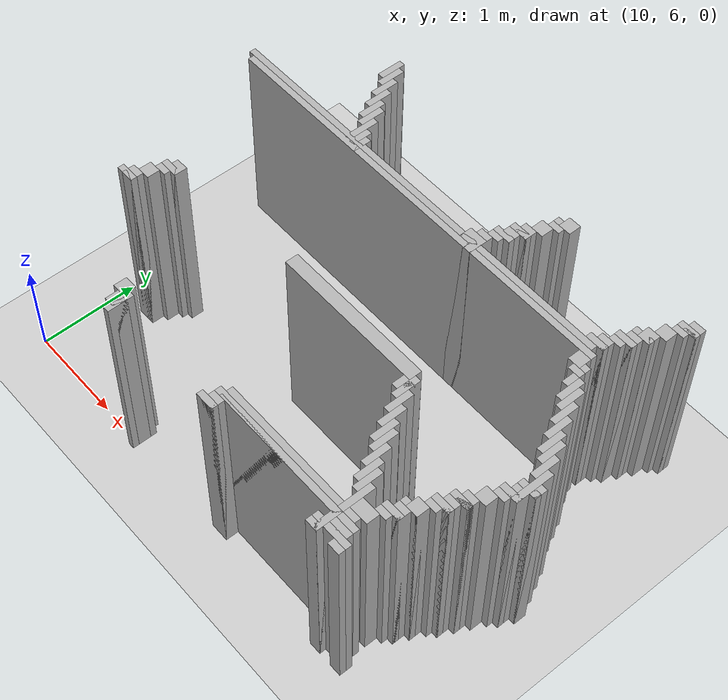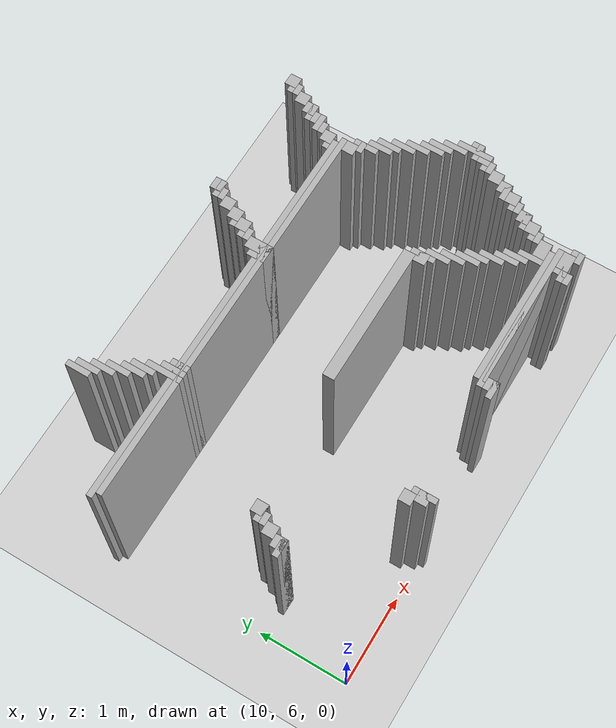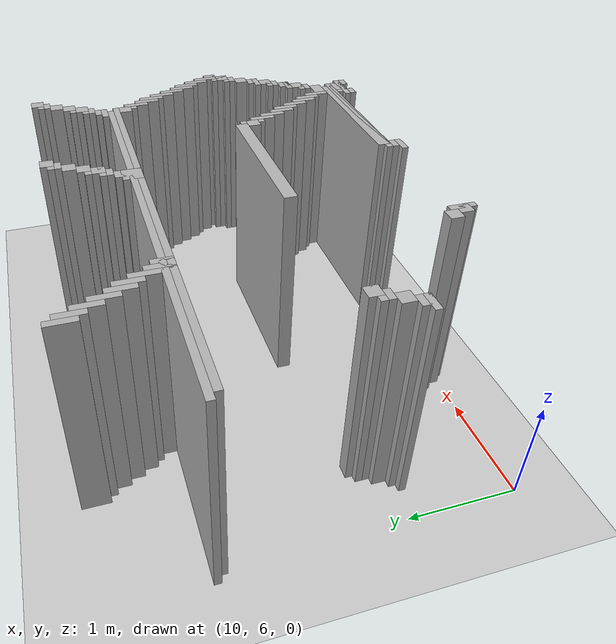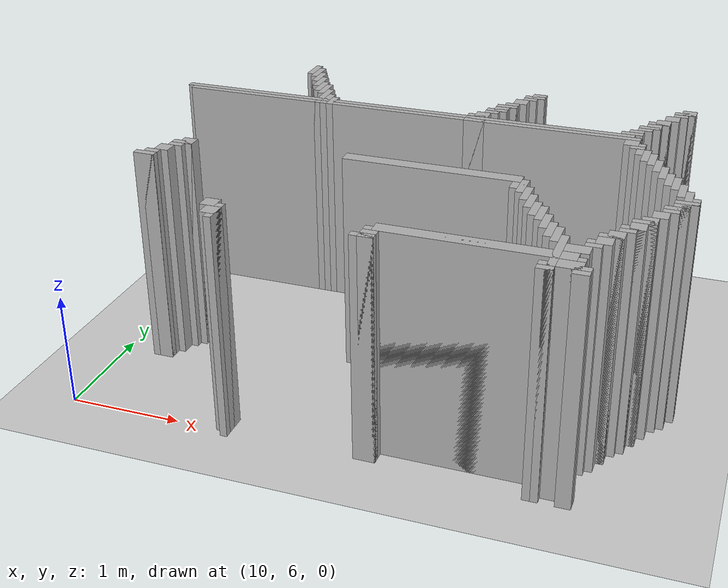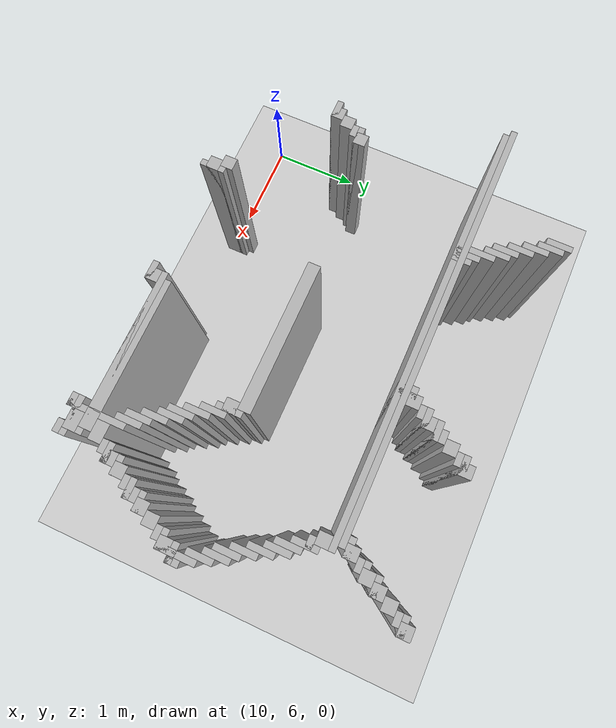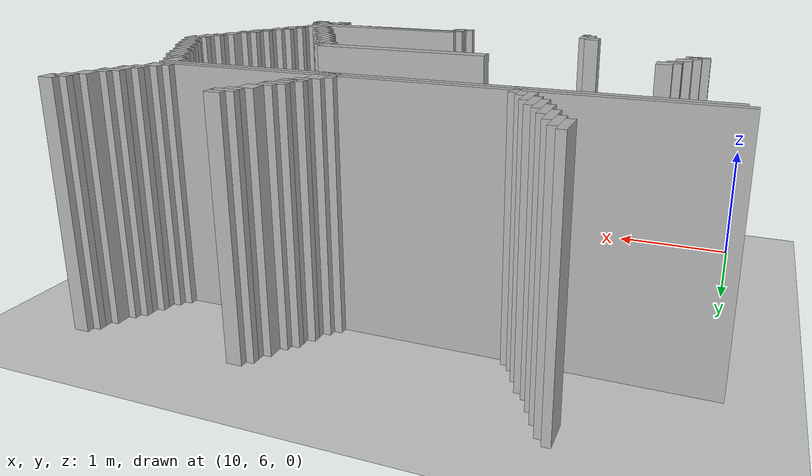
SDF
<sdf version="1.6">
 <world name="slam_world">
  <model name="ground_plane">
   <static>true</static>
   <link name="link">
    <collision name="collision">
     <geometry><plane><normal>0 0 1</normal><size>100 100</size></plane></geometry>
    </collision>
    <visual name="visual">
     <geometry><plane><normal>0 0 1</normal><size>100 100</size></plane></geometry>
     <material>
      <ambient>0.8 0.8 0.8 1</ambient>
      <diffuse>0.8 0.8 0.8 1</diffuse>
      <specular>0.8 0.8 0.8 1</specular>
     </material>
    </visual>
   </link>
  </model>
  <model name="wall_1402">
   <static>true</static>
   <pose>10.882978723404255 9.446808510638297 1.0 0 0 0</pose>
   <link name="link">
    <collision name="collision">
     <geometry><box><size>0.06382978723404255 0.2553191489361702 2.0</size></box></geometry>
    </collision>
    <visual name="visual">
     <geometry><box><size>0.06382978723404255 0.2553191489361702 2.0</size></box></geometry>
     <material><ambient>0.5 0.5 0.5 1</ambient><diffuse>0.7 0.7 0.7 1</diffuse></material>
    </visual>
   </link>
  </model>
  <model name="wall_1410">
   <static>true</static>
   <pose>10.946808510638297 9.382978723404255 1.0 0 0 0</pose>
   <link name="link">
    <collision name="collision">
     <geometry><box><size>0.06382978723404255 0.2553191489361702 2.0</size></box></geometry>
    </collision>
    <visual name="visual">
     <geometry><box><size>0.06382978723404255 0.2553191489361702 2.0</size></box></geometry>
     <material><ambient>0.5 0.5 0.5 1</ambient><diffuse>0.7 0.7 0.7 1</diffuse></material>
    </visual>
   </link>
  </model>
  <model name="wall_1417">
   <static>true</static>
   <pose>13.212765957446807 9.382978723404255 1.0 0 0 0</pose>
   <link name="link">
    <collision name="collision">
     <geometry><box><size>0.1276595744680851 0.1276595744680851 2.0</size></box></geometry>
    </collision>
    <visual name="visual">
     <geometry><box><size>0.1276595744680851 0.1276595744680851 2.0</size></box></geometry>
     <material><ambient>0.5 0.5 0.5 1</ambient><diffuse>0.7 0.7 0.7 1</diffuse></material>
    </visual>
   </link>
  </model>
  <model name="wall_1418">
   <static>true</static>
   <pose>14.617021276595743 9.382978723404255 1.0 0 0 0</pose>
   <link name="link">
    <collision name="collision">
     <geometry><box><size>0.1276595744680851 0.1276595744680851 2.0</size></box></geometry>
    </collision>
    <visual name="visual">
     <geometry><box><size>0.1276595744680851 0.1276595744680851 2.0</size></box></geometry>
     <material><ambient>0.5 0.5 0.5 1</ambient><diffuse>0.7 0.7 0.7 1</diffuse></material>
    </visual>
   </link>
  </model>
  <model name="wall_1424">
   <static>true</static>
   <pose>11.01063829787234 9.25531914893617 1.0 0 0 0</pose>
   <link name="link">
    <collision name="collision">
     <geometry><box><size>0.06382978723404255 0.2553191489361702 2.0</size></box></geometry>
    </collision>
    <visual name="visual">
     <geometry><box><size>0.06382978723404255 0.2553191489361702 2.0</size></box></geometry>
     <material><ambient>0.5 0.5 0.5 1</ambient><diffuse>0.7 0.7 0.7 1</diffuse></material>
    </visual>
   </link>
  </model>
  <model name="wall_1425">
   <static>true</static>
   <pose>13.180851063829786 9.351063829787233 1.0 0 0 0</pose>
   <link name="link">
    <collision name="collision">
     <geometry><box><size>0.19148936170212766 0.06382978723404255 2.0</size></box></geometry>
    </collision>
    <visual name="visual">
     <geometry><box><size>0.19148936170212766 0.06382978723404255 2.0</size></box></geometry>
     <material><ambient>0.5 0.5 0.5 1</ambient><diffuse>0.7 0.7 0.7 1</diffuse></material>
    </visual>
   </link>
  </model>
  <model name="wall_1426">
   <static>true</static>
   <pose>14.585106382978722 9.351063829787233 1.0 0 0 0</pose>
   <link name="link">
    <collision name="collision">
     <geometry><box><size>0.19148936170212766 0.06382978723404255 2.0</size></box></geometry>
    </collision>
    <visual name="visual">
     <geometry><box><size>0.19148936170212766 0.06382978723404255 2.0</size></box></geometry>
     <material><ambient>0.5 0.5 0.5 1</ambient><diffuse>0.7 0.7 0.7 1</diffuse></material>
    </visual>
   </link>
  </model>
  <model name="wall_1430">
   <static>true</static>
   <pose>13.148936170212766 9.287234042553191 1.0 0 0 0</pose>
   <link name="link">
    <collision name="collision">
     <geometry><box><size>0.1276595744680851 0.06382978723404255 2.0</size></box></geometry>
    </collision>
    <visual name="visual">
     <geometry><box><size>0.1276595744680851 0.06382978723404255 2.0</size></box></geometry>
     <material><ambient>0.5 0.5 0.5 1</ambient><diffuse>0.7 0.7 0.7 1</diffuse></material>
    </visual>
   </link>
  </model>
  <model name="wall_1431">
   <static>true</static>
   <pose>14.553191489361701 9.287234042553191 1.0 0 0 0</pose>
   <link name="link">
    <collision name="collision">
     <geometry><box><size>0.1276595744680851 0.06382978723404255 2.0</size></box></geometry>
    </collision>
    <visual name="visual">
     <geometry><box><size>0.1276595744680851 0.06382978723404255 2.0</size></box></geometry>
     <material><ambient>0.5 0.5 0.5 1</ambient><diffuse>0.7 0.7 0.7 1</diffuse></material>
    </visual>
   </link>
  </model>
  <model name="wall_1437">
   <static>true</static>
   <pose>11.074468085106382 9.127659574468085 1.0 0 0 0</pose>
   <link name="link">
    <collision name="collision">
     <geometry><box><size>0.06382978723404255 0.2553191489361702 2.0</size></box></geometry>
    </collision>
    <visual name="visual">
     <geometry><box><size>0.06382978723404255 0.2553191489361702 2.0</size></box></geometry>
     <material><ambient>0.5 0.5 0.5 1</ambient><diffuse>0.7 0.7 0.7 1</diffuse></material>
    </visual>
   </link>
  </model>
  <model name="wall_1438">
   <static>true</static>
   <pose>13.085106382978722 9.191489361702127 1.0 0 0 0</pose>
   <link name="link">
    <collision name="collision">
     <geometry><box><size>0.1276595744680851 0.1276595744680851 2.0</size></box></geometry>
    </collision>
    <visual name="visual">
     <geometry><box><size>0.1276595744680851 0.1276595744680851 2.0</size></box></geometry>
     <material><ambient>0.5 0.5 0.5 1</ambient><diffuse>0.7 0.7 0.7 1</diffuse></material>
    </visual>
   </link>
  </model>
  <model name="wall_1439">
   <static>true</static>
   <pose>14.489361702127658 9.191489361702127 1.0 0 0 0</pose>
   <link name="link">
    <collision name="collision">
     <geometry><box><size>0.1276595744680851 0.1276595744680851 2.0</size></box></geometry>
    </collision>
    <visual name="visual">
     <geometry><box><size>0.1276595744680851 0.1276595744680851 2.0</size></box></geometry>
     <material><ambient>0.5 0.5 0.5 1</ambient><diffuse>0.7 0.7 0.7 1</diffuse></material>
    </visual>
   </link>
  </model>
  <model name="wall_1445">
   <static>true</static>
   <pose>11.138297872340425 9.0 1.0 0 0 0</pose>
   <link name="link">
    <collision name="collision">
     <geometry><box><size>0.06382978723404255 0.2553191489361702 2.0</size></box></geometry>
    </collision>
    <visual name="visual">
     <geometry><box><size>0.06382978723404255 0.2553191489361702 2.0</size></box></geometry>
     <material><ambient>0.5 0.5 0.5 1</ambient><diffuse>0.7 0.7 0.7 1</diffuse></material>
    </visual>
   </link>
  </model>
  <model name="wall_1446">
   <static>true</static>
   <pose>13.02127659574468 9.063829787234042 1.0 0 0 0</pose>
   <link name="link">
    <collision name="collision">
     <geometry><box><size>0.1276595744680851 0.1276595744680851 2.0</size></box></geometry>
    </collision>
    <visual name="visual">
     <geometry><box><size>0.1276595744680851 0.1276595744680851 2.0</size></box></geometry>
     <material><ambient>0.5 0.5 0.5 1</ambient><diffuse>0.7 0.7 0.7 1</diffuse></material>
    </visual>
   </link>
  </model>
  <model name="wall_1447">
   <static>true</static>
   <pose>14.425531914893616 9.063829787234042 1.0 0 0 0</pose>
   <link name="link">
    <collision name="collision">
     <geometry><box><size>0.1276595744680851 0.1276595744680851 2.0</size></box></geometry>
    </collision>
    <visual name="visual">
     <geometry><box><size>0.1276595744680851 0.1276595744680851 2.0</size></box></geometry>
     <material><ambient>0.5 0.5 0.5 1</ambient><diffuse>0.7 0.7 0.7 1</diffuse></material>
    </visual>
   </link>
  </model>
  <model name="wall_1453">
   <static>true</static>
   <pose>11.202127659574467 8.936170212765957 1.0 0 0 0</pose>
   <link name="link">
    <collision name="collision">
     <geometry><box><size>0.06382978723404255 0.2553191489361702 2.0</size></box></geometry>
    </collision>
    <visual name="visual">
     <geometry><box><size>0.06382978723404255 0.2553191489361702 2.0</size></box></geometry>
     <material><ambient>0.5 0.5 0.5 1</ambient><diffuse>0.7 0.7 0.7 1</diffuse></material>
    </visual>
   </link>
  </model>
  <model name="wall_1454">
   <static>true</static>
   <pose>12.989361702127658 9.03191489361702 1.0 0 0 0</pose>
   <link name="link">
    <collision name="collision">
     <geometry><box><size>0.19148936170212766 0.06382978723404255 2.0</size></box></geometry>
    </collision>
    <visual name="visual">
     <geometry><box><size>0.19148936170212766 0.06382978723404255 2.0</size></box></geometry>
     <material><ambient>0.5 0.5 0.5 1</ambient><diffuse>0.7 0.7 0.7 1</diffuse></material>
    </visual>
   </link>
  </model>
  <model name="wall_1455">
   <static>true</static>
   <pose>14.393617021276595 9.03191489361702 1.0 0 0 0</pose>
   <link name="link">
    <collision name="collision">
     <geometry><box><size>0.19148936170212766 0.06382978723404255 2.0</size></box></geometry>
    </collision>
    <visual name="visual">
     <geometry><box><size>0.19148936170212766 0.06382978723404255 2.0</size></box></geometry>
     <material><ambient>0.5 0.5 0.5 1</ambient><diffuse>0.7 0.7 0.7 1</diffuse></material>
    </visual>
   </link>
  </model>
  <model name="wall_1459">
   <static>true</static>
   <pose>12.957446808510637 8.936170212765957 1.0 0 0 0</pose>
   <link name="link">
    <collision name="collision">
     <geometry><box><size>0.1276595744680851 0.1276595744680851 2.0</size></box></geometry>
    </collision>
    <visual name="visual">
     <geometry><box><size>0.1276595744680851 0.1276595744680851 2.0</size></box></geometry>
     <material><ambient>0.5 0.5 0.5 1</ambient><diffuse>0.7 0.7 0.7 1</diffuse></material>
    </visual>
   </link>
  </model>
  <model name="wall_1460">
   <static>true</static>
   <pose>14.361702127659573 8.936170212765957 1.0 0 0 0</pose>
   <link name="link">
    <collision name="collision">
     <geometry><box><size>0.1276595744680851 0.1276595744680851 2.0</size></box></geometry>
    </collision>
    <visual name="visual">
     <geometry><box><size>0.1276595744680851 0.1276595744680851 2.0</size></box></geometry>
     <material><ambient>0.5 0.5 0.5 1</ambient><diffuse>0.7 0.7 0.7 1</diffuse></material>
    </visual>
   </link>
  </model>
  <model name="wall_1466">
   <static>true</static>
   <pose>11.26595744680851 8.74468085106383 1.0 0 0 0</pose>
   <link name="link">
    <collision name="collision">
     <geometry><box><size>0.06382978723404255 0.3829787234042553 2.0</size></box></geometry>
    </collision>
    <visual name="visual">
     <geometry><box><size>0.06382978723404255 0.3829787234042553 2.0</size></box></geometry>
     <material><ambient>0.5 0.5 0.5 1</ambient><diffuse>0.7 0.7 0.7 1</diffuse></material>
    </visual>
   </link>
  </model>
  <model name="wall_1467">
   <static>true</static>
   <pose>12.925531914893616 8.904255319148936 1.0 0 0 0</pose>
   <link name="link">
    <collision name="collision">
     <geometry><box><size>0.19148936170212766 0.06382978723404255 2.0</size></box></geometry>
    </collision>
    <visual name="visual">
     <geometry><box><size>0.19148936170212766 0.06382978723404255 2.0</size></box></geometry>
     <material><ambient>0.5 0.5 0.5 1</ambient><diffuse>0.7 0.7 0.7 1</diffuse></material>
    </visual>
   </link>
  </model>
  <model name="wall_1468">
   <static>true</static>
   <pose>14.329787234042552 8.904255319148936 1.0 0 0 0</pose>
   <link name="link">
    <collision name="collision">
     <geometry><box><size>0.19148936170212766 0.06382978723404255 2.0</size></box></geometry>
    </collision>
    <visual name="visual">
     <geometry><box><size>0.19148936170212766 0.06382978723404255 2.0</size></box></geometry>
     <material><ambient>0.5 0.5 0.5 1</ambient><diffuse>0.7 0.7 0.7 1</diffuse></material>
    </visual>
   </link>
  </model>
  <model name="wall_1472">
   <static>true</static>
   <pose>12.893617021276595 8.840425531914892 1.0 0 0 0</pose>
   <link name="link">
    <collision name="collision">
     <geometry><box><size>0.1276595744680851 0.06382978723404255 2.0</size></box></geometry>
    </collision>
    <visual name="visual">
     <geometry><box><size>0.1276595744680851 0.06382978723404255 2.0</size></box></geometry>
     <material><ambient>0.5 0.5 0.5 1</ambient><diffuse>0.7 0.7 0.7 1</diffuse></material>
    </visual>
   </link>
  </model>
  <model name="wall_1473">
   <static>true</static>
   <pose>14.297872340425531 8.840425531914892 1.0 0 0 0</pose>
   <link name="link">
    <collision name="collision">
     <geometry><box><size>0.1276595744680851 0.06382978723404255 2.0</size></box></geometry>
    </collision>
    <visual name="visual">
     <geometry><box><size>0.1276595744680851 0.06382978723404255 2.0</size></box></geometry>
     <material><ambient>0.5 0.5 0.5 1</ambient><diffuse>0.7 0.7 0.7 1</diffuse></material>
    </visual>
   </link>
  </model>
  <model name="wall_1479">
   <static>true</static>
   <pose>11.329787234042552 8.680851063829786 1.0 0 0 0</pose>
   <link name="link">
    <collision name="collision">
     <geometry><box><size>0.06382978723404255 0.2553191489361702 2.0</size></box></geometry>
    </collision>
    <visual name="visual">
     <geometry><box><size>0.06382978723404255 0.2553191489361702 2.0</size></box></geometry>
     <material><ambient>0.5 0.5 0.5 1</ambient><diffuse>0.7 0.7 0.7 1</diffuse></material>
    </visual>
   </link>
  </model>
  <model name="wall_1480">
   <static>true</static>
   <pose>12.829787234042552 8.680851063829786 1.0 0 0 0</pose>
   <link name="link">
    <collision name="collision">
     <geometry><box><size>0.1276595744680851 0.2553191489361702 2.0</size></box></geometry>
    </collision>
    <visual name="visual">
     <geometry><box><size>0.1276595744680851 0.2553191489361702 2.0</size></box></geometry>
     <material><ambient>0.5 0.5 0.5 1</ambient><diffuse>0.7 0.7 0.7 1</diffuse></material>
    </visual>
   </link>
  </model>
  <model name="wall_1481">
   <static>true</static>
   <pose>14.234042553191488 8.74468085106383 1.0 0 0 0</pose>
   <link name="link">
    <collision name="collision">
     <geometry><box><size>0.1276595744680851 0.1276595744680851 2.0</size></box></geometry>
    </collision>
    <visual name="visual">
     <geometry><box><size>0.1276595744680851 0.1276595744680851 2.0</size></box></geometry>
     <material><ambient>0.5 0.5 0.5 1</ambient><diffuse>0.7 0.7 0.7 1</diffuse></material>
    </visual>
   </link>
  </model>
  <model name="wall_1484">
   <static>true</static>
   <pose>11.393617021276595 8.648936170212766 1.0 0 0 0</pose>
   <link name="link">
    <collision name="collision">
     <geometry><box><size>0.06382978723404255 0.19148936170212766 2.0</size></box></geometry>
    </collision>
    <visual name="visual">
     <geometry><box><size>0.06382978723404255 0.19148936170212766 2.0</size></box></geometry>
     <material><ambient>0.5 0.5 0.5 1</ambient><diffuse>0.7 0.7 0.7 1</diffuse></material>
    </visual>
   </link>
  </model>
  <model name="wall_1485">
   <static>true</static>
   <pose>12.797872340425531 8.648936170212766 1.0 0 0 0</pose>
   <link name="link">
    <collision name="collision">
     <geometry><box><size>0.19148936170212766 0.19148936170212766 2.0</size></box></geometry>
    </collision>
    <visual name="visual">
     <geometry><box><size>0.19148936170212766 0.19148936170212766 2.0</size></box></geometry>
     <material><ambient>0.5 0.5 0.5 1</ambient><diffuse>0.7 0.7 0.7 1</diffuse></material>
    </visual>
   </link>
  </model>
  <model name="wall_1486">
   <static>true</static>
   <pose>14.202127659574467 8.712765957446807 1.0 0 0 0</pose>
   <link name="link">
    <collision name="collision">
     <geometry><box><size>0.19148936170212766 0.06382978723404255 2.0</size></box></geometry>
    </collision>
    <visual name="visual">
     <geometry><box><size>0.19148936170212766 0.06382978723404255 2.0</size></box></geometry>
     <material><ambient>0.5 0.5 0.5 1</ambient><diffuse>0.7 0.7 0.7 1</diffuse></material>
    </visual>
   </link>
  </model>
  <model name="wall_1493">
   <static>true</static>
   <pose>12.063829787234042 8.648936170212766 1.0 0 0 0</pose>
   <link name="link">
    <collision name="collision">
     <geometry><box><size>4.340425531914893 0.06382978723404255 2.0</size></box></geometry>
    </collision>
    <visual name="visual">
     <geometry><box><size>4.340425531914893 0.06382978723404255 2.0</size></box></geometry>
     <material><ambient>0.5 0.5 0.5 1</ambient><diffuse>0.7 0.7 0.7 1</diffuse></material>
    </visual>
   </link>
  </model>
  <model name="wall_1497">
   <static>true</static>
   <pose>12.127659574468083 8.585106382978722 1.0 0 0 0</pose>
   <link name="link">
    <collision name="collision">
     <geometry><box><size>4.340425531914893 0.06382978723404255 2.0</size></box></geometry>
    </collision>
    <visual name="visual">
     <geometry><box><size>4.340425531914893 0.06382978723404255 2.0</size></box></geometry>
     <material><ambient>0.5 0.5 0.5 1</ambient><diffuse>0.7 0.7 0.7 1</diffuse></material>
    </visual>
   </link>
  </model>
  <model name="wall_1501">
   <static>true</static>
   <pose>14.234042553191488 8.48936170212766 1.0 0 0 0</pose>
   <link name="link">
    <collision name="collision">
     <geometry><box><size>0.1276595744680851 0.1276595744680851 2.0</size></box></geometry>
    </collision>
    <visual name="visual">
     <geometry><box><size>0.1276595744680851 0.1276595744680851 2.0</size></box></geometry>
     <material><ambient>0.5 0.5 0.5 1</ambient><diffuse>0.7 0.7 0.7 1</diffuse></material>
    </visual>
   </link>
  </model>
  <model name="wall_1505">
   <static>true</static>
   <pose>14.329787234042552 8.361702127659575 1.0 0 0 0</pose>
   <link name="link">
    <collision name="collision">
     <geometry><box><size>0.06382978723404255 0.2553191489361702 2.0</size></box></geometry>
    </collision>
    <visual name="visual">
     <geometry><box><size>0.06382978723404255 0.2553191489361702 2.0</size></box></geometry>
     <material><ambient>0.5 0.5 0.5 1</ambient><diffuse>0.7 0.7 0.7 1</diffuse></material>
    </visual>
   </link>
  </model>
  <model name="wall_1508">
   <static>true</static>
   <pose>14.297872340425531 8.393617021276595 1.0 0 0 0</pose>
   <link name="link">
    <collision name="collision">
     <geometry><box><size>0.1276595744680851 0.06382978723404255 2.0</size></box></geometry>
    </collision>
    <visual name="visual">
     <geometry><box><size>0.1276595744680851 0.06382978723404255 2.0</size></box></geometry>
     <material><ambient>0.5 0.5 0.5 1</ambient><diffuse>0.7 0.7 0.7 1</diffuse></material>
    </visual>
   </link>
  </model>
  <model name="wall_1513">
   <static>true</static>
   <pose>14.393617021276595 8.23404255319149 1.0 0 0 0</pose>
   <link name="link">
    <collision name="collision">
     <geometry><box><size>0.06382978723404255 0.2553191489361702 2.0</size></box></geometry>
    </collision>
    <visual name="visual">
     <geometry><box><size>0.06382978723404255 0.2553191489361702 2.0</size></box></geometry>
     <material><ambient>0.5 0.5 0.5 1</ambient><diffuse>0.7 0.7 0.7 1</diffuse></material>
    </visual>
   </link>
  </model>
  <model name="wall_1518">
   <static>true</static>
   <pose>14.457446808510637 8.170212765957446 1.0 0 0 0</pose>
   <link name="link">
    <collision name="collision">
     <geometry><box><size>0.06382978723404255 0.2553191489361702 2.0</size></box></geometry>
    </collision>
    <visual name="visual">
     <geometry><box><size>0.06382978723404255 0.2553191489361702 2.0</size></box></geometry>
     <material><ambient>0.5 0.5 0.5 1</ambient><diffuse>0.7 0.7 0.7 1</diffuse></material>
    </visual>
   </link>
  </model>
  <model name="wall_1525">
   <static>true</static>
   <pose>14.52127659574468 8.042553191489361 1.0 0 0 0</pose>
   <link name="link">
    <collision name="collision">
     <geometry><box><size>0.06382978723404255 0.2553191489361702 2.0</size></box></geometry>
    </collision>
    <visual name="visual">
     <geometry><box><size>0.06382978723404255 0.2553191489361702 2.0</size></box></geometry>
     <material><ambient>0.5 0.5 0.5 1</ambient><diffuse>0.7 0.7 0.7 1</diffuse></material>
    </visual>
   </link>
  </model>
  <model name="wall_1531">
   <static>true</static>
   <pose>14.585106382978722 7.914893617021276 1.0 0 0 0</pose>
   <link name="link">
    <collision name="collision">
     <geometry><box><size>0.06382978723404255 0.2553191489361702 2.0</size></box></geometry>
    </collision>
    <visual name="visual">
     <geometry><box><size>0.06382978723404255 0.2553191489361702 2.0</size></box></geometry>
     <material><ambient>0.5 0.5 0.5 1</ambient><diffuse>0.7 0.7 0.7 1</diffuse></material>
    </visual>
   </link>
  </model>
  <model name="wall_1536">
   <static>true</static>
   <pose>14.648936170212766 7.787234042553191 1.0 0 0 0</pose>
   <link name="link">
    <collision name="collision">
     <geometry><box><size>0.06382978723404255 0.2553191489361702 2.0</size></box></geometry>
    </collision>
    <visual name="visual">
     <geometry><box><size>0.06382978723404255 0.2553191489361702 2.0</size></box></geometry>
     <material><ambient>0.5 0.5 0.5 1</ambient><diffuse>0.7 0.7 0.7 1</diffuse></material>
    </visual>
   </link>
  </model>
  <model name="wall_1541">
   <static>true</static>
   <pose>14.712765957446807 7.723404255319148 1.0 0 0 0</pose>
   <link name="link">
    <collision name="collision">
     <geometry><box><size>0.06382978723404255 0.2553191489361702 2.0</size></box></geometry>
    </collision>
    <visual name="visual">
     <geometry><box><size>0.06382978723404255 0.2553191489361702 2.0</size></box></geometry>
     <material><ambient>0.5 0.5 0.5 1</ambient><diffuse>0.7 0.7 0.7 1</diffuse></material>
    </visual>
   </link>
  </model>
  <model name="wall_1547">
   <static>true</static>
   <pose>14.77659574468085 7.595744680851063 1.0 0 0 0</pose>
   <link name="link">
    <collision name="collision">
     <geometry><box><size>0.06382978723404255 0.2553191489361702 2.0</size></box></geometry>
    </collision>
    <visual name="visual">
     <geometry><box><size>0.06382978723404255 0.2553191489361702 2.0</size></box></geometry>
     <material><ambient>0.5 0.5 0.5 1</ambient><diffuse>0.7 0.7 0.7 1</diffuse></material>
    </visual>
   </link>
  </model>
  <model name="wall_1553">
   <static>true</static>
   <pose>14.840425531914892 7.404255319148936 1.0 0 0 0</pose>
   <link name="link">
    <collision name="collision">
     <geometry><box><size>0.06382978723404255 0.3829787234042553 2.0</size></box></geometry>
    </collision>
    <visual name="visual">
     <geometry><box><size>0.06382978723404255 0.3829787234042553 2.0</size></box></geometry>
     <material><ambient>0.5 0.5 0.5 1</ambient><diffuse>0.7 0.7 0.7 1</diffuse></material>
    </visual>
   </link>
  </model>
  <model name="wall_1562">
   <static>true</static>
   <pose>12.76595744680851 7.404255319148936 1.0 0 0 0</pose>
   <link name="link">
    <collision name="collision">
     <geometry><box><size>1.5319148936170213 0.1276595744680851 2.0</size></box></geometry>
    </collision>
    <visual name="visual">
     <geometry><box><size>1.5319148936170213 0.1276595744680851 2.0</size></box></geometry>
     <material><ambient>0.5 0.5 0.5 1</ambient><diffuse>0.7 0.7 0.7 1</diffuse></material>
    </visual>
   </link>
  </model>
  <model name="wall_1563">
   <static>true</static>
   <pose>14.904255319148936 7.404255319148936 1.0 0 0 0</pose>
   <link name="link">
    <collision name="collision">
     <geometry><box><size>0.06382978723404255 0.1276595744680851 2.0</size></box></geometry>
    </collision>
    <visual name="visual">
     <geometry><box><size>0.06382978723404255 0.1276595744680851 2.0</size></box></geometry>
     <material><ambient>0.5 0.5 0.5 1</ambient><diffuse>0.7 0.7 0.7 1</diffuse></material>
    </visual>
   </link>
  </model>
  <model name="wall_1569">
   <static>true</static>
   <pose>13.563829787234042 7.276595744680851 1.0 0 0 0</pose>
   <link name="link">
    <collision name="collision">
     <geometry><box><size>0.06382978723404255 0.2553191489361702 2.0</size></box></geometry>
    </collision>
    <visual name="visual">
     <geometry><box><size>0.06382978723404255 0.2553191489361702 2.0</size></box></geometry>
     <material><ambient>0.5 0.5 0.5 1</ambient><diffuse>0.7 0.7 0.7 1</diffuse></material>
    </visual>
   </link>
  </model>
  <model name="wall_1570">
   <static>true</static>
   <pose>14.840425531914892 7.372340425531914 1.0 0 0 0</pose>
   <link name="link">
    <collision name="collision">
     <geometry><box><size>0.19148936170212766 0.06382978723404255 2.0</size></box></geometry>
    </collision>
    <visual name="visual">
     <geometry><box><size>0.19148936170212766 0.06382978723404255 2.0</size></box></geometry>
     <material><ambient>0.5 0.5 0.5 1</ambient><diffuse>0.7 0.7 0.7 1</diffuse></material>
    </visual>
   </link>
  </model>
  <model name="wall_1577">
   <static>true</static>
   <pose>10.595744680851062 7.276595744680851 1.0 0 0 0</pose>
   <link name="link">
    <collision name="collision">
     <geometry><box><size>0.1276595744680851 0.1276595744680851 2.0</size></box></geometry>
    </collision>
    <visual name="visual">
     <geometry><box><size>0.1276595744680851 0.1276595744680851 2.0</size></box></geometry>
     <material><ambient>0.5 0.5 0.5 1</ambient><diffuse>0.7 0.7 0.7 1</diffuse></material>
    </visual>
   </link>
  </model>
  <model name="wall_1578">
   <static>true</static>
   <pose>13.53191489361702 7.276595744680851 1.0 0 0 0</pose>
   <link name="link">
    <collision name="collision">
     <geometry><box><size>0.1276595744680851 0.1276595744680851 2.0</size></box></geometry>
    </collision>
    <visual name="visual">
     <geometry><box><size>0.1276595744680851 0.1276595744680851 2.0</size></box></geometry>
     <material><ambient>0.5 0.5 0.5 1</ambient><diffuse>0.7 0.7 0.7 1</diffuse></material>
    </visual>
   </link>
  </model>
  <model name="wall_1579">
   <static>true</static>
   <pose>14.808510638297872 7.276595744680851 1.0 0 0 0</pose>
   <link name="link">
    <collision name="collision">
     <geometry><box><size>0.1276595744680851 0.1276595744680851 2.0</size></box></geometry>
    </collision>
    <visual name="visual">
     <geometry><box><size>0.1276595744680851 0.1276595744680851 2.0</size></box></geometry>
     <material><ambient>0.5 0.5 0.5 1</ambient><diffuse>0.7 0.7 0.7 1</diffuse></material>
    </visual>
   </link>
  </model>
  <model name="wall_1586">
   <static>true</static>
   <pose>10.563829787234042 7.244680851063829 1.0 0 0 0</pose>
   <link name="link">
    <collision name="collision">
     <geometry><box><size>0.19148936170212766 0.06382978723404255 2.0</size></box></geometry>
    </collision>
    <visual name="visual">
     <geometry><box><size>0.19148936170212766 0.06382978723404255 2.0</size></box></geometry>
     <material><ambient>0.5 0.5 0.5 1</ambient><diffuse>0.7 0.7 0.7 1</diffuse></material>
    </visual>
   </link>
  </model>
  <model name="wall_1587">
   <static>true</static>
   <pose>13.627659574468083 7.148936170212766 1.0 0 0 0</pose>
   <link name="link">
    <collision name="collision">
     <geometry><box><size>0.06382978723404255 0.2553191489361702 2.0</size></box></geometry>
    </collision>
    <visual name="visual">
     <geometry><box><size>0.06382978723404255 0.2553191489361702 2.0</size></box></geometry>
     <material><ambient>0.5 0.5 0.5 1</ambient><diffuse>0.7 0.7 0.7 1</diffuse></material>
    </visual>
   </link>
  </model>
  <model name="wall_1588">
   <static>true</static>
   <pose>14.77659574468085 7.244680851063829 1.0 0 0 0</pose>
   <link name="link">
    <collision name="collision">
     <geometry><box><size>0.19148936170212766 0.06382978723404255 2.0</size></box></geometry>
    </collision>
    <visual name="visual">
     <geometry><box><size>0.19148936170212766 0.06382978723404255 2.0</size></box></geometry>
     <material><ambient>0.5 0.5 0.5 1</ambient><diffuse>0.7 0.7 0.7 1</diffuse></material>
    </visual>
   </link>
  </model>
  <model name="wall_1594">
   <static>true</static>
   <pose>10.53191489361702 7.180851063829786 1.0 0 0 0</pose>
   <link name="link">
    <collision name="collision">
     <geometry><box><size>0.1276595744680851 0.06382978723404255 2.0</size></box></geometry>
    </collision>
    <visual name="visual">
     <geometry><box><size>0.1276595744680851 0.06382978723404255 2.0</size></box></geometry>
     <material><ambient>0.5 0.5 0.5 1</ambient><diffuse>0.7 0.7 0.7 1</diffuse></material>
    </visual>
   </link>
  </model>
  <model name="wall_1595">
   <static>true</static>
   <pose>14.744680851063828 7.180851063829786 1.0 0 0 0</pose>
   <link name="link">
    <collision name="collision">
     <geometry><box><size>0.1276595744680851 0.06382978723404255 2.0</size></box></geometry>
    </collision>
    <visual name="visual">
     <geometry><box><size>0.1276595744680851 0.06382978723404255 2.0</size></box></geometry>
     <material><ambient>0.5 0.5 0.5 1</ambient><diffuse>0.7 0.7 0.7 1</diffuse></material>
    </visual>
   </link>
  </model>
  <model name="wall_1602">
   <static>true</static>
   <pose>10.468085106382977 7.085106382978723 1.0 0 0 0</pose>
   <link name="link">
    <collision name="collision">
     <geometry><box><size>0.1276595744680851 0.1276595744680851 2.0</size></box></geometry>
    </collision>
    <visual name="visual">
     <geometry><box><size>0.1276595744680851 0.1276595744680851 2.0</size></box></geometry>
     <material><ambient>0.5 0.5 0.5 1</ambient><diffuse>0.7 0.7 0.7 1</diffuse></material>
    </visual>
   </link>
  </model>
  <model name="wall_1603">
   <static>true</static>
   <pose>13.691489361702127 7.0212765957446805 1.0 0 0 0</pose>
   <link name="link">
    <collision name="collision">
     <geometry><box><size>0.06382978723404255 0.2553191489361702 2.0</size></box></geometry>
    </collision>
    <visual name="visual">
     <geometry><box><size>0.06382978723404255 0.2553191489361702 2.0</size></box></geometry>
     <material><ambient>0.5 0.5 0.5 1</ambient><diffuse>0.7 0.7 0.7 1</diffuse></material>
    </visual>
   </link>
  </model>
  <model name="wall_1604">
   <static>true</static>
   <pose>14.680851063829786 7.085106382978723 1.0 0 0 0</pose>
   <link name="link">
    <collision name="collision">
     <geometry><box><size>0.1276595744680851 0.1276595744680851 2.0</size></box></geometry>
    </collision>
    <visual name="visual">
     <geometry><box><size>0.1276595744680851 0.1276595744680851 2.0</size></box></geometry>
     <material><ambient>0.5 0.5 0.5 1</ambient><diffuse>0.7 0.7 0.7 1</diffuse></material>
    </visual>
   </link>
  </model>
  <model name="wall_1611">
   <static>true</static>
   <pose>10.404255319148936 6.957446808510638 1.0 0 0 0</pose>
   <link name="link">
    <collision name="collision">
     <geometry><box><size>0.1276595744680851 0.1276595744680851 2.0</size></box></geometry>
    </collision>
    <visual name="visual">
     <geometry><box><size>0.1276595744680851 0.1276595744680851 2.0</size></box></geometry>
     <material><ambient>0.5 0.5 0.5 1</ambient><diffuse>0.7 0.7 0.7 1</diffuse></material>
    </visual>
   </link>
  </model>
  <model name="wall_1612">
   <static>true</static>
   <pose>13.755319148936168 6.8936170212765955 1.0 0 0 0</pose>
   <link name="link">
    <collision name="collision">
     <geometry><box><size>0.06382978723404255 0.2553191489361702 2.0</size></box></geometry>
    </collision>
    <visual name="visual">
     <geometry><box><size>0.06382978723404255 0.2553191489361702 2.0</size></box></geometry>
     <material><ambient>0.5 0.5 0.5 1</ambient><diffuse>0.7 0.7 0.7 1</diffuse></material>
    </visual>
   </link>
  </model>
  <model name="wall_1613">
   <static>true</static>
   <pose>14.617021276595743 6.957446808510638 1.0 0 0 0</pose>
   <link name="link">
    <collision name="collision">
     <geometry><box><size>0.1276595744680851 0.1276595744680851 2.0</size></box></geometry>
    </collision>
    <visual name="visual">
     <geometry><box><size>0.1276595744680851 0.1276595744680851 2.0</size></box></geometry>
     <material><ambient>0.5 0.5 0.5 1</ambient><diffuse>0.7 0.7 0.7 1</diffuse></material>
    </visual>
   </link>
  </model>
  <model name="wall_1620">
   <static>true</static>
   <pose>10.372340425531915 6.925531914893616 1.0 0 0 0</pose>
   <link name="link">
    <collision name="collision">
     <geometry><box><size>0.19148936170212766 0.06382978723404255 2.0</size></box></geometry>
    </collision>
    <visual name="visual">
     <geometry><box><size>0.19148936170212766 0.06382978723404255 2.0</size></box></geometry>
     <material><ambient>0.5 0.5 0.5 1</ambient><diffuse>0.7 0.7 0.7 1</diffuse></material>
    </visual>
   </link>
  </model>
  <model name="wall_1621">
   <static>true</static>
   <pose>13.819148936170212 6.829787234042553 1.0 0 0 0</pose>
   <link name="link">
    <collision name="collision">
     <geometry><box><size>0.06382978723404255 0.2553191489361702 2.0</size></box></geometry>
    </collision>
    <visual name="visual">
     <geometry><box><size>0.06382978723404255 0.2553191489361702 2.0</size></box></geometry>
     <material><ambient>0.5 0.5 0.5 1</ambient><diffuse>0.7 0.7 0.7 1</diffuse></material>
    </visual>
   </link>
  </model>
  <model name="wall_1622">
   <static>true</static>
   <pose>14.585106382978722 6.925531914893616 1.0 0 0 0</pose>
   <link name="link">
    <collision name="collision">
     <geometry><box><size>0.19148936170212766 0.06382978723404255 2.0</size></box></geometry>
    </collision>
    <visual name="visual">
     <geometry><box><size>0.19148936170212766 0.06382978723404255 2.0</size></box></geometry>
     <material><ambient>0.5 0.5 0.5 1</ambient><diffuse>0.7 0.7 0.7 1</diffuse></material>
    </visual>
   </link>
  </model>
  <model name="wall_1629">
   <static>true</static>
   <pose>14.553191489361701 6.829787234042553 1.0 0 0 0</pose>
   <link name="link">
    <collision name="collision">
     <geometry><box><size>0.1276595744680851 0.1276595744680851 2.0</size></box></geometry>
    </collision>
    <visual name="visual">
     <geometry><box><size>0.1276595744680851 0.1276595744680851 2.0</size></box></geometry>
     <material><ambient>0.5 0.5 0.5 1</ambient><diffuse>0.7 0.7 0.7 1</diffuse></material>
    </visual>
   </link>
  </model>
  <model name="wall_1637">
   <static>true</static>
   <pose>13.882978723404253 6.702127659574468 1.0 0 0 0</pose>
   <link name="link">
    <collision name="collision">
     <geometry><box><size>0.06382978723404255 0.2553191489361702 2.0</size></box></geometry>
    </collision>
    <visual name="visual">
     <geometry><box><size>0.06382978723404255 0.2553191489361702 2.0</size></box></geometry>
     <material><ambient>0.5 0.5 0.5 1</ambient><diffuse>0.7 0.7 0.7 1</diffuse></material>
    </visual>
   </link>
  </model>
  <model name="wall_1638">
   <static>true</static>
   <pose>14.52127659574468 6.797872340425531 1.0 0 0 0</pose>
   <link name="link">
    <collision name="collision">
     <geometry><box><size>0.19148936170212766 0.06382978723404255 2.0</size></box></geometry>
    </collision>
    <visual name="visual">
     <geometry><box><size>0.19148936170212766 0.06382978723404255 2.0</size></box></geometry>
     <material><ambient>0.5 0.5 0.5 1</ambient><diffuse>0.7 0.7 0.7 1</diffuse></material>
    </visual>
   </link>
  </model>
  <model name="wall_1645">
   <static>true</static>
   <pose>14.489361702127658 6.734042553191489 1.0 0 0 0</pose>
   <link name="link">
    <collision name="collision">
     <geometry><box><size>0.1276595744680851 0.06382978723404255 2.0</size></box></geometry>
    </collision>
    <visual name="visual">
     <geometry><box><size>0.1276595744680851 0.06382978723404255 2.0</size></box></geometry>
     <material><ambient>0.5 0.5 0.5 1</ambient><diffuse>0.7 0.7 0.7 1</diffuse></material>
    </visual>
   </link>
  </model>
  <model name="wall_1653">
   <static>true</static>
   <pose>13.946808510638297 6.574468085106383 1.0 0 0 0</pose>
   <link name="link">
    <collision name="collision">
     <geometry><box><size>0.06382978723404255 0.2553191489361702 2.0</size></box></geometry>
    </collision>
    <visual name="visual">
     <geometry><box><size>0.06382978723404255 0.2553191489361702 2.0</size></box></geometry>
     <material><ambient>0.5 0.5 0.5 1</ambient><diffuse>0.7 0.7 0.7 1</diffuse></material>
    </visual>
   </link>
  </model>
  <model name="wall_1654">
   <static>true</static>
   <pose>14.425531914893616 6.638297872340425 1.0 0 0 0</pose>
   <link name="link">
    <collision name="collision">
     <geometry><box><size>0.1276595744680851 0.1276595744680851 2.0</size></box></geometry>
    </collision>
    <visual name="visual">
     <geometry><box><size>0.1276595744680851 0.1276595744680851 2.0</size></box></geometry>
     <material><ambient>0.5 0.5 0.5 1</ambient><diffuse>0.7 0.7 0.7 1</diffuse></material>
    </visual>
   </link>
  </model>
  <model name="wall_1662">
   <static>true</static>
   <pose>14.010638297872338 6.51063829787234 1.0 0 0 0</pose>
   <link name="link">
    <collision name="collision">
     <geometry><box><size>0.06382978723404255 0.2553191489361702 2.0</size></box></geometry>
    </collision>
    <visual name="visual">
     <geometry><box><size>0.06382978723404255 0.2553191489361702 2.0</size></box></geometry>
     <material><ambient>0.5 0.5 0.5 1</ambient><diffuse>0.7 0.7 0.7 1</diffuse></material>
    </visual>
   </link>
  </model>
  <model name="wall_1663">
   <static>true</static>
   <pose>14.393617021276595 6.606382978723404 1.0 0 0 0</pose>
   <link name="link">
    <collision name="collision">
     <geometry><box><size>0.19148936170212766 0.06382978723404255 2.0</size></box></geometry>
    </collision>
    <visual name="visual">
     <geometry><box><size>0.19148936170212766 0.06382978723404255 2.0</size></box></geometry>
     <material><ambient>0.5 0.5 0.5 1</ambient><diffuse>0.7 0.7 0.7 1</diffuse></material>
    </visual>
   </link>
  </model>
  <model name="wall_1670">
   <static>true</static>
   <pose>14.361702127659573 6.51063829787234 1.0 0 0 0</pose>
   <link name="link">
    <collision name="collision">
     <geometry><box><size>0.1276595744680851 0.1276595744680851 2.0</size></box></geometry>
    </collision>
    <visual name="visual">
     <geometry><box><size>0.1276595744680851 0.1276595744680851 2.0</size></box></geometry>
     <material><ambient>0.5 0.5 0.5 1</ambient><diffuse>0.7 0.7 0.7 1</diffuse></material>
    </visual>
   </link>
  </model>
  <model name="wall_1678">
   <static>true</static>
   <pose>14.074468085106382 6.223404255319148 1.0 0 0 0</pose>
   <link name="link">
    <collision name="collision">
     <geometry><box><size>0.06382978723404255 0.5744680851063829 2.0</size></box></geometry>
    </collision>
    <visual name="visual">
     <geometry><box><size>0.06382978723404255 0.5744680851063829 2.0</size></box></geometry>
     <material><ambient>0.5 0.5 0.5 1</ambient><diffuse>0.7 0.7 0.7 1</diffuse></material>
    </visual>
   </link>
  </model>
  <model name="wall_1679">
   <static>true</static>
   <pose>14.329787234042552 6.478723404255319 1.0 0 0 0</pose>
   <link name="link">
    <collision name="collision">
     <geometry><box><size>0.19148936170212766 0.06382978723404255 2.0</size></box></geometry>
    </collision>
    <visual name="visual">
     <geometry><box><size>0.19148936170212766 0.06382978723404255 2.0</size></box></geometry>
     <material><ambient>0.5 0.5 0.5 1</ambient><diffuse>0.7 0.7 0.7 1</diffuse></material>
    </visual>
   </link>
  </model>
  <model name="wall_1686">
   <static>true</static>
   <pose>14.297872340425531 6.414893617021276 1.0 0 0 0</pose>
   <link name="link">
    <collision name="collision">
     <geometry><box><size>0.1276595744680851 0.06382978723404255 2.0</size></box></geometry>
    </collision>
    <visual name="visual">
     <geometry><box><size>0.1276595744680851 0.06382978723404255 2.0</size></box></geometry>
     <material><ambient>0.5 0.5 0.5 1</ambient><diffuse>0.7 0.7 0.7 1</diffuse></material>
    </visual>
   </link>
  </model>
  <model name="wall_1693">
   <static>true</static>
   <pose>14.202127659574467 6.319148936170213 1.0 0 0 0</pose>
   <link name="link">
    <collision name="collision">
     <geometry><box><size>0.19148936170212766 0.1276595744680851 2.0</size></box></geometry>
    </collision>
    <visual name="visual">
     <geometry><box><size>0.19148936170212766 0.1276595744680851 2.0</size></box></geometry>
     <material><ambient>0.5 0.5 0.5 1</ambient><diffuse>0.7 0.7 0.7 1</diffuse></material>
    </visual>
   </link>
  </model>
  <model name="wall_1701">
   <static>true</static>
   <pose>11.361702127659573 6.191489361702128 1.0 0 0 0</pose>
   <link name="link">
    <collision name="collision">
     <geometry><box><size>0.1276595744680851 0.1276595744680851 2.0</size></box></geometry>
    </collision>
    <visual name="visual">
     <geometry><box><size>0.1276595744680851 0.1276595744680851 2.0</size></box></geometry>
     <material><ambient>0.5 0.5 0.5 1</ambient><diffuse>0.7 0.7 0.7 1</diffuse></material>
    </visual>
   </link>
  </model>
  <model name="wall_1702">
   <static>true</static>
   <pose>13.468085106382977 6.191489361702128 1.0 0 0 0</pose>
   <link name="link">
    <collision name="collision">
     <geometry><box><size>1.5319148936170213 0.1276595744680851 2.0</size></box></geometry>
    </collision>
    <visual name="visual">
     <geometry><box><size>1.5319148936170213 0.1276595744680851 2.0</size></box></geometry>
     <material><ambient>0.5 0.5 0.5 1</ambient><diffuse>0.7 0.7 0.7 1</diffuse></material>
    </visual>
   </link>
  </model>
  <model name="wall_1708">
   <static>true</static>
   <pose>11.457446808510637 6.063829787234042 1.0 0 0 0</pose>
   <link name="link">
    <collision name="collision">
     <geometry><box><size>0.06382978723404255 0.2553191489361702 2.0</size></box></geometry>
    </collision>
    <visual name="visual">
     <geometry><box><size>0.06382978723404255 0.2553191489361702 2.0</size></box></geometry>
     <material><ambient>0.5 0.5 0.5 1</ambient><diffuse>0.7 0.7 0.7 1</diffuse></material>
    </visual>
   </link>
  </model>
  <model name="wall_1709">
   <static>true</static>
   <pose>13.468085106382977 6.159574468085106 1.0 0 0 0</pose>
   <link name="link">
    <collision name="collision">
     <geometry><box><size>1.6595744680851063 0.06382978723404255 2.0</size></box></geometry>
    </collision>
    <visual name="visual">
     <geometry><box><size>1.6595744680851063 0.06382978723404255 2.0</size></box></geometry>
     <material><ambient>0.5 0.5 0.5 1</ambient><diffuse>0.7 0.7 0.7 1</diffuse></material>
    </visual>
   </link>
  </model>
  <model name="wall_1714">
   <static>true</static>
   <pose>11.425531914893616 6.063829787234042 1.0 0 0 0</pose>
   <link name="link">
    <collision name="collision">
     <geometry><box><size>0.1276595744680851 0.1276595744680851 2.0</size></box></geometry>
    </collision>
    <visual name="visual">
     <geometry><box><size>0.1276595744680851 0.1276595744680851 2.0</size></box></geometry>
     <material><ambient>0.5 0.5 0.5 1</ambient><diffuse>0.7 0.7 0.7 1</diffuse></material>
    </visual>
   </link>
  </model>
  <model name="wall_1715">
   <static>true</static>
   <pose>12.702127659574467 6.063829787234042 1.0 0 0 0</pose>
   <link name="link">
    <collision name="collision">
     <geometry><box><size>0.1276595744680851 0.1276595744680851 2.0</size></box></geometry>
    </collision>
    <visual name="visual">
     <geometry><box><size>0.1276595744680851 0.1276595744680851 2.0</size></box></geometry>
     <material><ambient>0.5 0.5 0.5 1</ambient><diffuse>0.7 0.7 0.7 1</diffuse></material>
    </visual>
   </link>
  </model>
  <model name="wall_1716">
   <static>true</static>
   <pose>14.202127659574467 6.063829787234042 1.0 0 0 0</pose>
   <link name="link">
    <collision name="collision">
     <geometry><box><size>0.19148936170212766 0.1276595744680851 2.0</size></box></geometry>
    </collision>
    <visual name="visual">
     <geometry><box><size>0.19148936170212766 0.1276595744680851 2.0</size></box></geometry>
     <material><ambient>0.5 0.5 0.5 1</ambient><diffuse>0.7 0.7 0.7 1</diffuse></material>
    </visual>
   </link>
  </model>
  <model name="wall_1723">
   <static>true</static>
   <pose>12.670212765957446 6.031914893617021 1.0 0 0 0</pose>
   <link name="link">
    <collision name="collision">
     <geometry><box><size>0.19148936170212766 0.06382978723404255 2.0</size></box></geometry>
    </collision>
    <visual name="visual">
     <geometry><box><size>0.19148936170212766 0.06382978723404255 2.0</size></box></geometry>
     <material><ambient>0.5 0.5 0.5 1</ambient><diffuse>0.7 0.7 0.7 1</diffuse></material>
    </visual>
   </link>
  </model>
  <model name="wall_1724">
   <static>true</static>
   <pose>14.170212765957446 6.031914893617021 1.0 0 0 0</pose>
   <link name="link">
    <collision name="collision">
     <geometry><box><size>0.3829787234042553 0.06382978723404255 2.0</size></box></geometry>
    </collision>
    <visual name="visual">
     <geometry><box><size>0.3829787234042553 0.06382978723404255 2.0</size></box></geometry>
     <material><ambient>0.5 0.5 0.5 1</ambient><diffuse>0.7 0.7 0.7 1</diffuse></material>
    </visual>
   </link>
  </model>
  <model name="wall_1729">
   <static>true</static>
   <pose>14.042553191489361 5.968085106382978 1.0 0 0 0</pose>
   <link name="link">
    <collision name="collision">
     <geometry><box><size>0.1276595744680851 0.06382978723404255 2.0</size></box></geometry>
    </collision>
    <visual name="visual">
     <geometry><box><size>0.1276595744680851 0.06382978723404255 2.0</size></box></geometry>
     <material><ambient>0.5 0.5 0.5 1</ambient><diffuse>0.7 0.7 0.7 1</diffuse></material>
    </visual>
   </link>
  </model>
  <model name="wall_1730">
   <static>true</static>
   <pose>14.297872340425531 5.968085106382978 1.0 0 0 0</pose>
   <link name="link">
    <collision name="collision">
     <geometry><box><size>0.1276595744680851 0.06382978723404255 2.0</size></box></geometry>
    </collision>
    <visual name="visual">
     <geometry><box><size>0.1276595744680851 0.06382978723404255 2.0</size></box></geometry>
     <material><ambient>0.5 0.5 0.5 1</ambient><diffuse>0.7 0.7 0.7 1</diffuse></material>
    </visual>
   </link>
  </model>
 </world>
</sdf>
